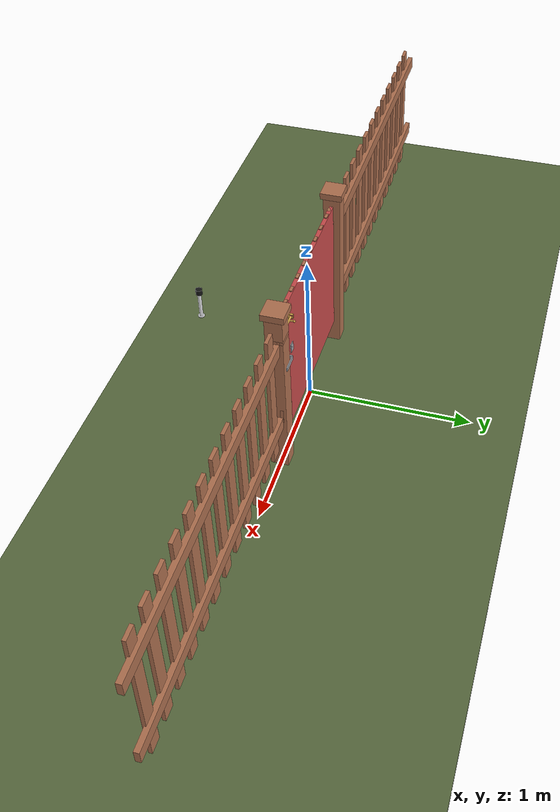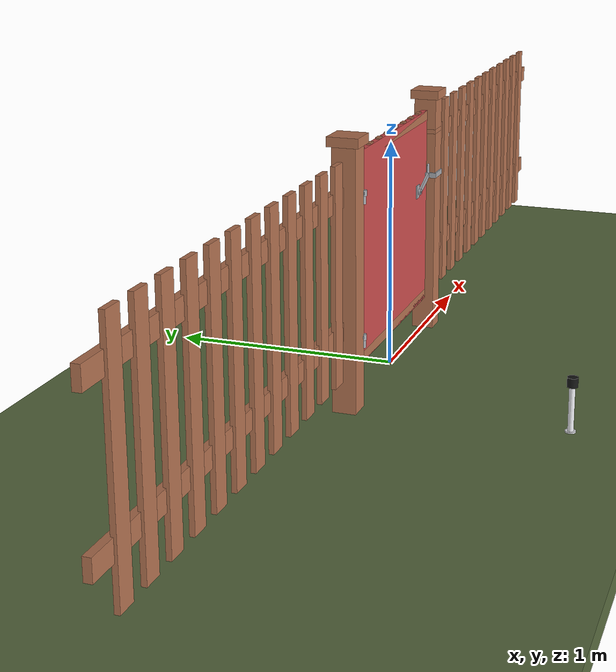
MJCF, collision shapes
<?xml version="1.0" ?>
<mujoco model="db0191_gate_swing_full">
  <compiler angle="radian" meshdir="../../hardware" texturedir="../../textures" autolimits="true" inertiafromgeom="false"/>
  <option timestep="0.002" integrator="implicitfast" cone="elliptic" impratio="10" noslip_iterations="3">
    <flag multiccd="enable"/>
  </option>
  <size memory="16M"/>
  <default>
    <geom condim="4" solref="0.005 1" solimp="0.95 0.99 0.001"/>
    <joint solreflimit="0.005 1" solimplimit="0.95 0.99 0.001"/>
    <tendon solreflimit="0.005 1"/>
    <equality solref="0.002 1"/>
  </default>
  <visual>
    <headlight ambient="0.4 0.4 0.4" diffuse="0.7 0.7 0.7" specular="0.2 0.2 0.2"/>
    <quality shadowsize="4096"/>
    <map znear="0.01" zfar="60"/>
  </visual>
  <asset>
    <mesh name="strap_hinge_78d1bbb966" file="strap_hinge_78d1bbb966.obj"/>
    <material name="mat_floor" rgba="0.35 0.42 0.25 1" specular="0.2" shininess="0.15" reflectance="0"/>
    <material name="mat_wall" rgba="0.78 0.76 0.7 1" specular="0.2" shininess="0.1" reflectance="0"/>
    <material name="mat_leaf" rgba="0.7 0.45 0.32 1" specular="0.2" shininess="0.4" reflectance="0"/>
    <material name="mat_hinge" rgba="0.65 0.66 0.68 1" specular="0.74" shininess="0.5" reflectance="0.36"/>
    <material name="mat_op_steel_galvanized" rgba="0.65 0.66 0.68 1" specular="0.74" shininess="0.5" reflectance="0.36"/>
    <material name="mat_op_brass" rgba="0.85 0.66 0.3 1" specular="0.8" shininess="0.75" reflectance="0.4"/>
    <material name="mat_frame" rgba="0.7 0.45 0.32 1" specular="0.2" shininess="0.4" reflectance="0"/>
    <material name="mat_bumper_stop" rgba="0.08 0.08 0.08 1" specular="0.2" shininess="0.1" reflectance="0"/>
    <material name="mat_stop_base" rgba="0.9 0.9 0.92 1" specular="0.8" shininess="0.9" reflectance="0.4"/>
    <material name="mat_fence" rgba="0.7 0.45 0.32 1" specular="0.2" shininess="0.4" reflectance="0"/>
    <texture name="skybox" type="skybox" builtin="gradient" rgb1="0.6 0.7 0.85" rgb2="0.9 0.92 0.95" width="256" height="256"/>
  </asset>
  <worldbody>
    <light name="sun" pos="1.5 -2.5 4" dir="-0.3 0.5 -0.8" directional="true" diffuse="0.8 0.8 0.8" specular="0.3 0.3 0.3" castshadow="true"/>
    <light name="fill" pos="-1.5 2.5 3" dir="0.3 -0.5 -0.7" directional="true" diffuse="0.35 0.35 0.4" castshadow="false"/>
    <camera name="robot_view" pos="0 -1.875 0.985" xyaxes="1 0 0 0 0.26963 0.962964" fovy="52"/>
    <camera name="far_view" pos="0 1.875 0.985" xyaxes="-1 0 0 0 -0.26963 0.962964" fovy="52"/>
    <camera name="iso" pos="1.425 -1.575 1.285" xyaxes="0.741536 0.670913 0 -0.242917 0.268487 0.932151" fovy="46"/>
    <camera name="detail_handle" pos="0.666 -0.8245 1.085" xyaxes="0.97561 0.219512 0 -0.070934 0.315262 0.94635" fovy="38"/>
    <geom name="floor" type="box" size="6 6 0.05" pos="0 0 -0.05" material="mat_floor" group="0" contype="1" conaffinity="1" friction="0.8 0.005 0.0001" density="2400"/>
    <geom name="hinge_pintle_0" type="cylinder" size="0.008 0.02" pos="-0.503 -0.05 0.274" material="mat_hinge" group="1" contype="0" conaffinity="0" density="7850"/>
    <geom name="hinge_pintle_1" type="cylinder" size="0.008 0.02" pos="-0.503 -0.05 0.874" material="mat_hinge" group="1" contype="0" conaffinity="0" density="7850"/>
    <geom name="leaf_aux_bolt_keeper_b" type="box" size="0.014 0.003 0.0005" pos="0.5055 0.0245 0.937" quat="-0.5 -0.5 0.5 0.5" material="mat_op_brass" group="1" contype="0" conaffinity="0" density="7800"/>
    <geom name="leaf_aux_bolt_keeper_l" type="box" size="0.003 0.01 0.0005" pos="0.5055 0.0355 0.95" quat="-0.5 -0.5 0.5 0.5" material="mat_op_brass" group="1" contype="0" conaffinity="0" density="7800"/>
    <geom name="leaf_aux_bolt_keeper_t" type="box" size="0.014 0.003 0.0005" pos="0.5055 0.0245 0.963" quat="-0.5 -0.5 0.5 0.5" material="mat_op_brass" group="1" contype="0" conaffinity="0" density="7800"/>
    <geom name="leaf_aux_bolt_keeper_r" type="box" size="0.003 0.01 0.0005" pos="0.5055 0.0135 0.95" quat="-0.5 -0.5 0.5 0.5" material="mat_op_brass" group="1" contype="0" conaffinity="0" density="7800"/>
    <geom name="post_hinge" type="box" size="0.05 0.05 0.55" pos="-0.556 0 0.55" material="mat_frame" group="0" contype="1" conaffinity="1" friction="0.6 0.005 0.0001" density="350"/>
    <geom name="post_hinge_cap" type="box" size="0.065 0.065 0.02" pos="-0.556 0 1.12" material="mat_frame" group="1" contype="0" conaffinity="0" density="350"/>
    <geom name="post_950_wall_n" type="box" size="0.05 0.00875 0.01" pos="0.556 0.04125 0.95" material="mat_frame" group="0" contype="1" conaffinity="1" friction="0.6 0.005 0.0001" density="350"/>
    <geom name="post_950_wall_p" type="box" size="0.05 0.03325 0.01" pos="0.556 -0.01675 0.95" material="mat_frame" group="0" contype="1" conaffinity="1" friction="0.6 0.005 0.0001" density="350"/>
    <geom name="post_950_back" type="box" size="0.029 0.008 0.01" pos="0.577 0.0245 0.95" material="mat_frame" group="0" contype="1" conaffinity="1" friction="0.6 0.005 0.0001" density="350"/>
    <geom name="post_latch_0" type="box" size="0.05 0.05 0.47" pos="0.556 0 0.47" material="mat_frame" group="0" contype="1" conaffinity="1" friction="0.6 0.005 0.0001" density="350"/>
    <geom name="post_latch_1" type="box" size="0.05 0.05 0.07" pos="0.556 0 1.03" material="mat_frame" group="0" contype="1" conaffinity="1" friction="0.6 0.005 0.0001" density="350"/>
    <geom name="post_latch_cap" type="box" size="0.065 0.065 0.02" pos="0.556 0 1.12" material="mat_frame" group="1" contype="0" conaffinity="0" density="350"/>
    <geom name="gate_stop" type="box" size="0.02 0.012 0.06" pos="0.486 0.0245 0.4" material="mat_frame" group="0" contype="1" conaffinity="1" friction="0.6 0.005 0.0001" density="350"/>
    <geom name="door_stop_base" type="cylinder" size="0.022 0.003" pos="-0.4885 -0.9 0.003" material="mat_stop_base" group="0" contype="1" conaffinity="1" friction="0.6 0.005 0.0001" density="7850"/>
    <geom name="door_stop_post" type="cylinder" size="0.012 0.092" pos="-0.4885 -0.9 0.098" material="mat_stop_base" group="0" contype="1" conaffinity="1" friction="0.6 0.005 0.0001" density="7850"/>
    <geom name="door_stop_bumper" type="cylinder" size="0.022 0.02" pos="-0.4885 -0.9 0.21" material="mat_bumper_stop" group="0" contype="1" conaffinity="1" friction="0.6 0.005 0.0001" density="1100"/>
    <geom name="fence_picket_l_0" type="box" size="0.04 0.01 0.45" pos="-0.686 0 0.6" material="mat_fence" group="0" contype="1" conaffinity="1" friction="0.6 0.005 0.0001" density="400"/>
    <geom name="fence_picket_l_1" type="box" size="0.04 0.01 0.45" pos="-0.846 0 0.6" material="mat_fence" group="0" contype="1" conaffinity="1" friction="0.6 0.005 0.0001" density="400"/>
    <geom name="fence_picket_l_2" type="box" size="0.04 0.01 0.45" pos="-1.006 0 0.6" material="mat_fence" group="0" contype="1" conaffinity="1" friction="0.6 0.005 0.0001" density="400"/>
    <geom name="fence_picket_l_3" type="box" size="0.04 0.01 0.45" pos="-1.166 0 0.6" material="mat_fence" group="0" contype="1" conaffinity="1" friction="0.6 0.005 0.0001" density="400"/>
    <geom name="fence_picket_l_4" type="box" size="0.04 0.01 0.45" pos="-1.326 0 0.6" material="mat_fence" group="0" contype="1" conaffinity="1" friction="0.6 0.005 0.0001" density="400"/>
    <geom name="fence_picket_l_5" type="box" size="0.04 0.01 0.45" pos="-1.486 0 0.6" material="mat_fence" group="0" contype="1" conaffinity="1" friction="0.6 0.005 0.0001" density="400"/>
    <geom name="fence_picket_l_6" type="box" size="0.04 0.01 0.45" pos="-1.646 0 0.6" material="mat_fence" group="0" contype="1" conaffinity="1" friction="0.6 0.005 0.0001" density="400"/>
    <geom name="fence_picket_l_7" type="box" size="0.04 0.01 0.45" pos="-1.806 0 0.6" material="mat_fence" group="0" contype="1" conaffinity="1" friction="0.6 0.005 0.0001" density="400"/>
    <geom name="fence_picket_l_8" type="box" size="0.04 0.01 0.45" pos="-1.966 0 0.6" material="mat_fence" group="0" contype="1" conaffinity="1" friction="0.6 0.005 0.0001" density="400"/>
    <geom name="fence_picket_l_9" type="box" size="0.04 0.01 0.45" pos="-2.126 0 0.6" material="mat_fence" group="0" contype="1" conaffinity="1" friction="0.6 0.005 0.0001" density="400"/>
    <geom name="fence_picket_l_10" type="box" size="0.04 0.01 0.45" pos="-2.286 0 0.6" material="mat_fence" group="0" contype="1" conaffinity="1" friction="0.6 0.005 0.0001" density="400"/>
    <geom name="fence_picket_l_11" type="box" size="0.04 0.01 0.45" pos="-2.446 0 0.6" material="mat_fence" group="0" contype="1" conaffinity="1" friction="0.6 0.005 0.0001" density="400"/>
    <geom name="fence_rail_l" type="box" size="1 0.015 0.04" pos="-1.606 0.015 0.9" material="mat_fence" group="0" contype="1" conaffinity="1" friction="0.6 0.005 0.0001" density="400"/>
    <geom name="fence_rail_b_l" type="box" size="1 0.015 0.04" pos="-1.606 0.015 0.35" material="mat_fence" group="0" contype="1" conaffinity="1" friction="0.6 0.005 0.0001" density="400"/>
    <geom name="fence_picket_r_0" type="box" size="0.04 0.01 0.45" pos="0.686 0 0.6" material="mat_fence" group="0" contype="1" conaffinity="1" friction="0.6 0.005 0.0001" density="400"/>
    <geom name="fence_picket_r_1" type="box" size="0.04 0.01 0.45" pos="0.846 0 0.6" material="mat_fence" group="0" contype="1" conaffinity="1" friction="0.6 0.005 0.0001" density="400"/>
    <geom name="fence_picket_r_2" type="box" size="0.04 0.01 0.45" pos="1.006 0 0.6" material="mat_fence" group="0" contype="1" conaffinity="1" friction="0.6 0.005 0.0001" density="400"/>
    <geom name="fence_picket_r_3" type="box" size="0.04 0.01 0.45" pos="1.166 0 0.6" material="mat_fence" group="0" contype="1" conaffinity="1" friction="0.6 0.005 0.0001" density="400"/>
    <geom name="fence_picket_r_4" type="box" size="0.04 0.01 0.45" pos="1.326 0 0.6" material="mat_fence" group="0" contype="1" conaffinity="1" friction="0.6 0.005 0.0001" density="400"/>
    <geom name="fence_picket_r_5" type="box" size="0.04 0.01 0.45" pos="1.486 0 0.6" material="mat_fence" group="0" contype="1" conaffinity="1" friction="0.6 0.005 0.0001" density="400"/>
    <geom name="fence_picket_r_6" type="box" size="0.04 0.01 0.45" pos="1.646 0 0.6" material="mat_fence" group="0" contype="1" conaffinity="1" friction="0.6 0.005 0.0001" density="400"/>
    <geom name="fence_picket_r_7" type="box" size="0.04 0.01 0.45" pos="1.806 0 0.6" material="mat_fence" group="0" contype="1" conaffinity="1" friction="0.6 0.005 0.0001" density="400"/>
    <geom name="fence_picket_r_8" type="box" size="0.04 0.01 0.45" pos="1.966 0 0.6" material="mat_fence" group="0" contype="1" conaffinity="1" friction="0.6 0.005 0.0001" density="400"/>
    <geom name="fence_picket_r_9" type="box" size="0.04 0.01 0.45" pos="2.126 0 0.6" material="mat_fence" group="0" contype="1" conaffinity="1" friction="0.6 0.005 0.0001" density="400"/>
    <geom name="fence_picket_r_10" type="box" size="0.04 0.01 0.45" pos="2.286 0 0.6" material="mat_fence" group="0" contype="1" conaffinity="1" friction="0.6 0.005 0.0001" density="400"/>
    <geom name="fence_picket_r_11" type="box" size="0.04 0.01 0.45" pos="2.446 0 0.6" material="mat_fence" group="0" contype="1" conaffinity="1" friction="0.6 0.005 0.0001" density="400"/>
    <geom name="fence_rail_r" type="box" size="1 0.015 0.04" pos="1.606 0.015 0.9" material="mat_fence" group="0" contype="1" conaffinity="1" friction="0.6 0.005 0.0001" density="400"/>
    <geom name="fence_rail_b_r" type="box" size="1 0.015 0.04" pos="1.606 0.015 0.35" material="mat_fence" group="0" contype="1" conaffinity="1" friction="0.6 0.005 0.0001" density="400"/>
    <geom name="gate_stop_strap_0" type="box" size="0.0505 0.0096 0.048" pos="0.556 0.0245 0.4" material="mat_frame" group="1" contype="0" conaffinity="0" density="7850"/>
    <site name="approach_point" pos="0 -1.5 0" quat="1 0 0 0" size="0.05" rgba="0.2 0.9 0.2 0.5" group="4"/>
    <site name="goal_point" pos="0 1.5 0" quat="1 0 0 0" size="0.05" rgba="0.2 0.9 0.2 0.5" group="4"/>
    <site name="door_plane_center" pos="0 0 0.46" quat="1 0 0 0" size="0.02" rgba="0.2 0.9 0.2 0.5" group="4"/>
    <body name="leaf" pos="-0.506 0 0">
      <inertial pos="0.438817 -0.003753 0.606083" mass="9.987453" quat="0.705695 0.705731 -0.038673 0.049416" diaginertia="0.715007203 0.949299562 1.661970963"/>
      <joint name="leaf_hinge" type="hinge" axis="0 0 -1" pos="0.003 -0.05 0" limited="true" range="0 1.570796" damping="1.16254" frictionloss="1.096915" stiffness="5" springref="-0.8" armature="0.02"/>
      <geom name="leaf_slab_col" type="box" size="0.5 0.0125 0.45" pos="0.503 0 0.6" material="mat_leaf" group="3" contype="1" conaffinity="1" rgba="0.8 0.3 0.3 0.25" friction="0.35 0.005 0.0001" density="1"/>
      <geom name="leaf_rail_b" type="box" size="0.5 0.0125 0.0225" pos="0.503 0 0.1725" material="mat_leaf" group="1" contype="0" conaffinity="0" density="1"/>
      <geom name="leaf_rail_t" type="box" size="0.5 0.0125 0.0225" pos="0.503 0 1.0275" material="mat_leaf" group="1" contype="0" conaffinity="0" density="1"/>
      <geom name="leaf_stile_h" type="box" size="0.0225 0.0125 0.45" pos="0.0255 0 0.6" material="mat_leaf" group="1" contype="0" conaffinity="0" density="1"/>
      <geom name="leaf_stile_l" type="box" size="0.0225 0.0125 0.45" pos="0.9805 0 0.6" material="mat_leaf" group="1" contype="0" conaffinity="0" density="1"/>
      <geom name="leaf_picket_0" type="box" size="0.02 0.00875 0.4365" pos="0.104875 0 0.62" material="mat_leaf" group="1" contype="0" conaffinity="0" density="1"/>
      <geom name="leaf_picket_1" type="box" size="0.02 0.00875 0.4365" pos="0.218625 0 0.62" material="mat_leaf" group="1" contype="0" conaffinity="0" density="1"/>
      <geom name="leaf_picket_2" type="box" size="0.02 0.00875 0.4365" pos="0.332375 0 0.62" material="mat_leaf" group="1" contype="0" conaffinity="0" density="1"/>
      <geom name="leaf_picket_3" type="box" size="0.02 0.00875 0.4365" pos="0.446125 0 0.62" material="mat_leaf" group="1" contype="0" conaffinity="0" density="1"/>
      <geom name="leaf_picket_4" type="box" size="0.02 0.00875 0.4365" pos="0.559875 0 0.62" material="mat_leaf" group="1" contype="0" conaffinity="0" density="1"/>
      <geom name="leaf_picket_5" type="box" size="0.02 0.00875 0.4365" pos="0.673625 0 0.62" material="mat_leaf" group="1" contype="0" conaffinity="0" density="1"/>
      <geom name="leaf_picket_6" type="box" size="0.02 0.00875 0.4365" pos="0.787375 0 0.62" material="mat_leaf" group="1" contype="0" conaffinity="0" density="1"/>
      <geom name="leaf_picket_7" type="box" size="0.02 0.00875 0.4365" pos="0.901125 0 0.62" material="mat_leaf" group="1" contype="0" conaffinity="0" density="1"/>
      <geom name="hinge_strap_0" type="mesh" mesh="strap_hinge_78d1bbb966" pos="0.003 -0.0155 0.3" material="mat_hinge" group="1" contype="0" conaffinity="0" density="7850"/>
      <geom name="hinge_strap_eye_0" type="cylinder" size="0.011 0.012" pos="0.003 -0.05 0.3" material="mat_hinge" group="1" contype="0" conaffinity="0" density="7850"/>
      <geom name="hinge_strap_neck_0" type="box" size="0.012 0.02125 0.006" pos="0.003 -0.03275 0.3" material="mat_hinge" group="1" contype="0" conaffinity="0" density="7850"/>
      <geom name="hinge_strap_1" type="mesh" mesh="strap_hinge_78d1bbb966" pos="0.003 -0.0155 0.9" material="mat_hinge" group="1" contype="0" conaffinity="0" density="7850"/>
      <geom name="hinge_strap_eye_1" type="cylinder" size="0.011 0.012" pos="0.003 -0.05 0.9" material="mat_hinge" group="1" contype="0" conaffinity="0" density="7850"/>
      <geom name="hinge_strap_neck_1" type="box" size="0.012 0.02125 0.006" pos="0.003 -0.03275 0.9" material="mat_hinge" group="1" contype="0" conaffinity="0" density="7850"/>
      <geom name="leaf_fork_strap_n" type="box" size="0.02 0.002 0.03" pos="0.863 -0.0145 0.7" material="mat_op_steel_galvanized" group="1" contype="0" conaffinity="0" density="7800"/>
      <geom name="leaf_fork_strap_p" type="box" size="0.02 0.002 0.03" pos="0.863 0.0145 0.7" material="mat_op_steel_galvanized" group="1" contype="0" conaffinity="0" density="7800"/>
      <geom name="leaf_fork_pin" type="cylinder" size="0.005 0.0245" pos="0.863 -0.008 0.7" quat="0.707107 -0.707107 0 0" material="mat_op_steel_galvanized" group="1" contype="0" conaffinity="0" density="7800"/>
      <geom name="leaf_aux_bolt_plate" type="box" size="0.0595 0.019 0.001" pos="0.9355 0.0135 0.95" quat="0.707107 -0.707107 0 0" material="mat_op_brass" group="1" contype="0" conaffinity="0" density="7800"/>
      <geom name="leaf_aux_bolt_guide_0_leg_n" type="box" size="0.006 0.002 0.0125" pos="0.987 0.025 0.961" quat="0.707107 -0.707107 0 0" material="mat_op_brass" group="1" contype="0" conaffinity="0" density="7800"/>
      <geom name="leaf_aux_bolt_guide_0_leg_p" type="box" size="0.006 0.002 0.0125" pos="0.987 0.025 0.939" quat="0.707107 -0.707107 0 0" material="mat_op_brass" group="1" contype="0" conaffinity="0" density="7800"/>
      <geom name="leaf_aux_bolt_guide_0_bridge" type="box" size="0.006 0.013 0.002" pos="0.987 0.0355 0.95" quat="0.707107 -0.707107 0 0" material="mat_op_brass" group="1" contype="0" conaffinity="0" density="7800"/>
      <geom name="leaf_aux_bolt_guide_1_leg_n" type="box" size="0.006 0.002 0.0125" pos="0.886 0.025 0.961" quat="0.707107 -0.707107 0 0" material="mat_op_brass" group="1" contype="0" conaffinity="0" density="7800"/>
      <geom name="leaf_aux_bolt_guide_1_leg_p" type="box" size="0.006 0.002 0.0125" pos="0.886 0.025 0.939" quat="0.707107 -0.707107 0 0" material="mat_op_brass" group="1" contype="0" conaffinity="0" density="7800"/>
      <geom name="leaf_aux_bolt_guide_1_bridge" type="box" size="0.006 0.013 0.002" pos="0.886 0.0355 0.95" quat="0.707107 -0.707107 0 0" material="mat_op_brass" group="1" contype="0" conaffinity="0" density="7800"/>
      <site name="leaf_edge_mid" pos="1.003 0 0.45" quat="1 0 0 0" size="0.02" rgba="0.2 0.9 0.2 0.5" group="4"/>
      <body name="leaf_fork" pos="0.863 0 0.7">
        <inertial pos="0.117177 -0.010227 0.04089" mass="0.225763" quat="0.98476 -0.02305 -0.132031 0.110834" diaginertia="0.000369957 0.000962486 0.001254335"/>
        <joint name="leaf_fork_hinge" type="hinge" axis="0 -1 0" limited="true" range="0 1.2" damping="0.037477" frictionloss="0.006367" armature="0.0001"/>
        <geom name="leaf_fork_arm" type="box" size="0.069176 0.004 0.012" pos="0.0645 -0.0245 0.025" quat="0.982958 0 -0.183833 0" material="mat_op_steel_galvanized" group="0" contype="1" conaffinity="1" friction="0.6 0.005 0.0001" density="2500"/>
        <geom name="leaf_fork_eye" type="cylinder" size="0.014 0.005" pos="0 -0.0245 0" quat="0.707107 -0.707107 0 0" material="mat_op_steel_galvanized" group="1" contype="0" conaffinity="0" density="2500"/>
        <geom name="leaf_fork_tine_n" type="box" size="0.05 0.003 0.012" pos="0.179 -0.059 0.05" material="mat_op_steel_galvanized" group="0" contype="1" conaffinity="1" friction="0.6 0.005 0.0001" density="2500"/>
        <geom name="leaf_fork_tine_p" type="box" size="0.05 0.003 0.012" pos="0.179 0.059 0.05" material="mat_op_steel_galvanized" group="0" contype="1" conaffinity="1" friction="0.6 0.005 0.0001" density="2500"/>
        <geom name="leaf_fork_bridge" type="box" size="0.004 0.062 0.012" pos="0.129 0 0.05" material="mat_op_steel_galvanized" group="0" contype="1" conaffinity="1" friction="0.6 0.005 0.0001" density="2500"/>
        <geom name="leaf_fork_handle" type="capsule" size="0.006 0.018" pos="0.129 -0.0245 0.08" material="mat_op_steel_galvanized" group="0" contype="1" conaffinity="1" friction="0.7 0.01 0.0001" density="2500"/>
        <site name="leaf_fork_grip" pos="0.129 -0.0245 0.105" quat="1 0 0 0" size="0.012" rgba="0.2 0.9 0.2 0.5" group="4"/>
      </body>
      <body name="leaf_aux_bolt" pos="1.003 0.0245 0.95">
        <inertial pos="-0.068563 0.00492 0" mass="0.111784" quat="0.998595 0 0 -0.05299" diaginertia="0.000012212 0.000071985 0.000082309"/>
        <joint name="leaf_aux_bolt_slide" type="slide" axis="-1 0 0" limited="true" range="0 0.045" damping="1" frictionloss="1" armature="0.1" ref="0.045"/>
        <geom name="leaf_aux_bolt_rod" type="capsule" size="0.006 0.044" pos="-0.065 0 0" quat="0.707107 0 0.707107 0" material="mat_op_brass" group="0" contype="1" conaffinity="1" friction="0.6 0.005 0.0001" density="7850"/>
        <geom name="leaf_aux_bolt_knob" type="capsule" size="0.005 0.01" pos="-0.08 0.015 0" quat="0.707107 -0.707107 0 0" material="mat_op_brass" group="0" contype="1" conaffinity="1" friction="0.6 0.005 0.0001" density="7850"/>
        <geom name="leaf_aux_bolt_knob_end" type="sphere" size="0.00675" pos="-0.08 0.03 0" material="mat_op_brass" group="1" contype="0" conaffinity="0" density="7850"/>
        <site name="leaf_aux_bolt_grip" pos="-0.08 0.034 0" quat="1 0 0 0" size="0.012" rgba="0.2 0.9 0.2 0.5" group="4"/>
      </body>
    </body>
  </worldbody>
  <sensor>
    <jointpos name="leaf_hinge_pos" joint="leaf_hinge"/>
    <jointvel name="leaf_hinge_vel" joint="leaf_hinge"/>
    <jointpos name="leaf_fork_hinge_pos" joint="leaf_fork_hinge"/>
    <jointvel name="leaf_fork_hinge_vel" joint="leaf_fork_hinge"/>
    <jointpos name="leaf_aux_bolt_slide_pos" joint="leaf_aux_bolt_slide"/>
    <jointvel name="leaf_aux_bolt_slide_vel" joint="leaf_aux_bolt_slide"/>
  </sensor>
</mujoco>
